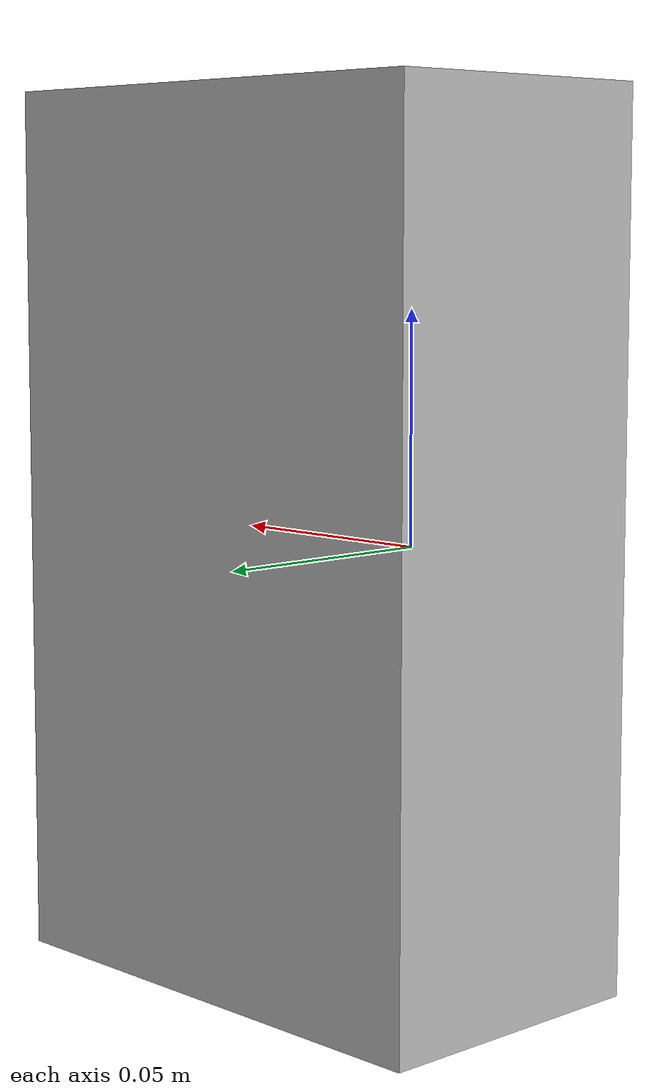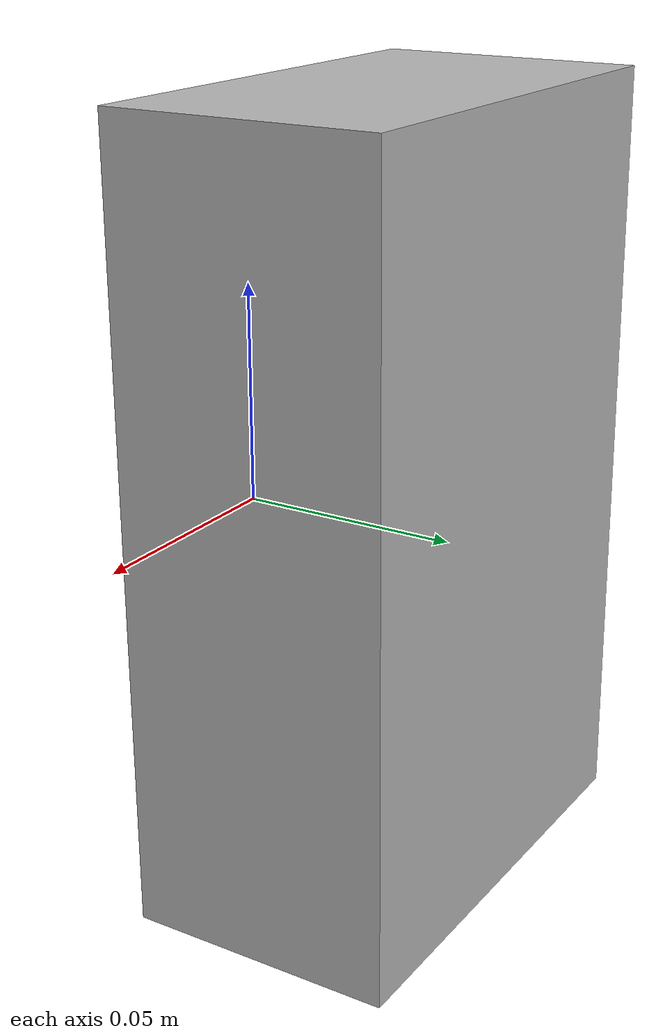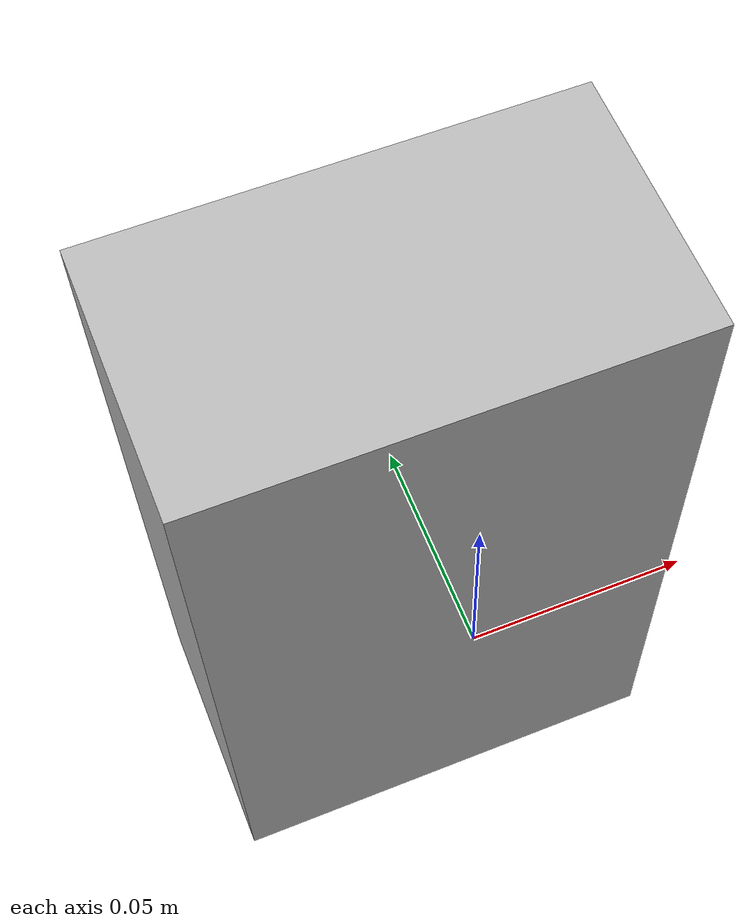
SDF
<?xml version="1.0" ?>
<sdf version="1.4">
  <model name="shelf1_box1_3a">
    <link name="body">
      <pose>0 0 0 0 0 0</pose>
      <inertial>
        <pose>  -0.005000   0.032000   0.005500 0 0 0</pose>
        <mass>0.5</mass>
        <inertia>
          <ixx>0.01</ixx>
          <ixy>0</ixy>
          <ixz>0</ixz>
          <iyy>0.01</iyy>
          <iyz>0</iyz>
          <izz>0.01</izz>
        </inertia>
      </inertial>
      <collision name="collision">
        <geometry>
          <mesh>
            <uri>model://bookshelf/shelf1_items/box1_3a/box1_3a.dae</uri>
          </mesh>
        </geometry>
      </collision>
      <visual name="visual">
        <geometry>
          <mesh>
            <uri>model://bookshelf/shelf1_items/box1_3a/box1_3a.dae</uri>
          </mesh>
        </geometry>
      </visual>
    </link>
  </model>
</sdf>
